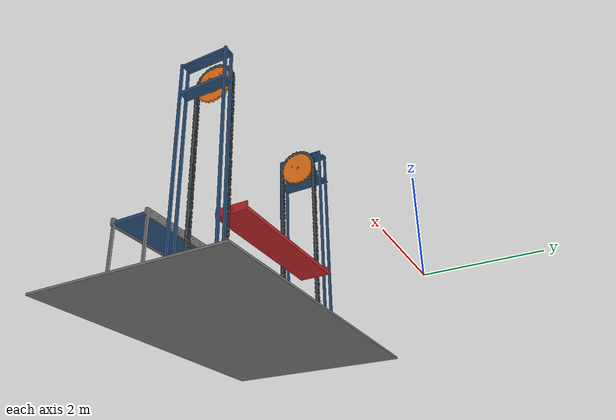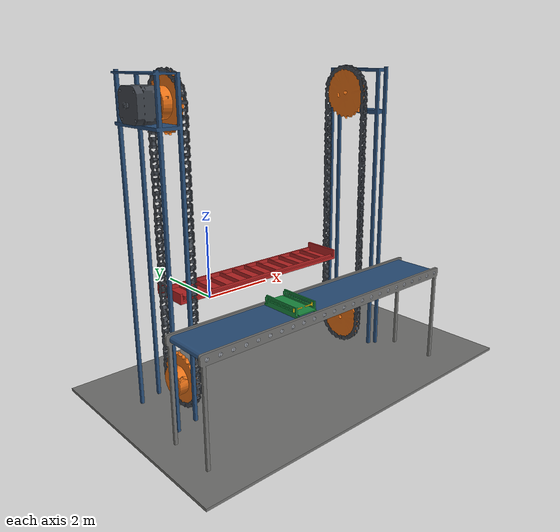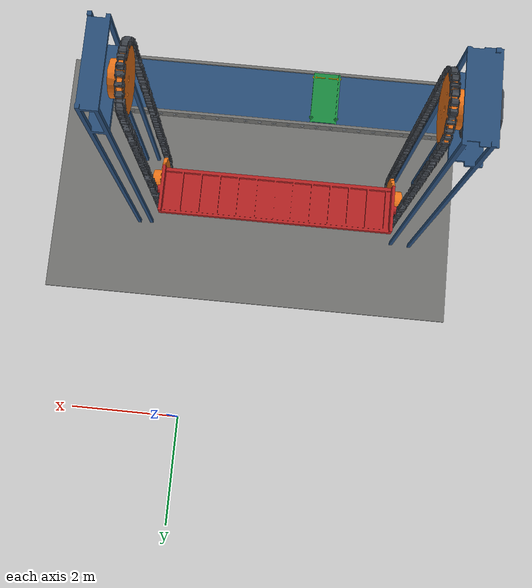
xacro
<?xml version="1.0"?>
<robot name="assemforchouk" xmlns:xacro="http://www.ros.org/wiki/xacro">

  <xacro:arg name="fix_to_world"  default="true"/>
  <xacro:arg name="use_gazebo"    default="true"/>
  <xacro:arg name="controllers_file"
             default="$(find assemforchouk_sim)/config/controllers.yaml"/>

  <xacro:property name="mesh" value="package://assemforchouk_sim/meshes"/>

  <!-- Plinth underside sits at z = -3.592 in the CAD base frame; lift the whole
       model so the machine stands on the ground plane. -->
  <xacro:property name="ground_offset" value="3.592"/>

  <xacro:property name="slide_lower"  value="-1.90"/>
  <xacro:property name="slide_upper"  value="3.40"/>
  <xacro:property name="push_lower"   value="0.0"/>
  <xacro:property name="push_upper"   value="1.05"/>
  <xacro:property name="lift_lower"   value="-2.05"/>
  <xacro:property name="lift_upper"   value="4.10"/>
  <xacro:property name="shelf_lower"  value="-0.15"/>
  <xacro:property name="shelf_upper"  value="1.15"/>
  <!-- shelf deck abuts the carriage deck edge-to-edge at exactly this value -->
  <xacro:property name="shelf_transfer" value="1.055"/>

  <xacro:include filename="$(find assemforchouk_sim)/urdf/materials.xacro"/>

  <!-- =========================== world attachment =========================== -->
  <xacro:if value="$(arg fix_to_world)">
    <link name="world"/>
    <joint name="world_to_base" type="fixed">
      <parent link="world"/>
      <child  link="base_link"/>
      <origin xyz="0 0 ${ground_offset}" rpy="0 0 0"/>
    </joint>
  </xacro:if>

  <!-- ========================= base_link : the cell ========================= -->
  <link name="base_link">
    <inertial>
      <origin xyz="-1.037 -4.589 -0.498" rpy="0 0 0"/>
      <mass value="2259.2"/>
      <inertia ixx="4719.6" ixy="87.766" ixz="50.036"
               iyy="13025"  iyz="-249.6" izz="10834"/>
    </inertial>

    <visual name="plinth">      <geometry><mesh filename="${mesh}/base_floor.stl"/></geometry>       <material name="concrete"/>     </visual>
    <visual name="towers">      <geometry><mesh filename="${mesh}/base_tower.stl"/></geometry>       <material name="steel_frame"/>  </visual>
    <visual name="rollerframe"> <geometry><mesh filename="${mesh}/base_rollerframe.stl"/></geometry> <material name="steel_frame"/>  </visual>
    <visual name="rollers">     <geometry><mesh filename="${mesh}/base_roller.stl"/></geometry>      <material name="steel_light"/>  </visual>
    <visual name="drums">       <geometry><mesh filename="${mesh}/base_drum.stl"/></geometry>        <material name="safety_orange"/></visual>
    <visual name="drive">       <geometry><mesh filename="${mesh}/base_drive.stl"/></geometry>       <material name="steel_dark"/>   </visual>
    <visual name="chains">      <geometry><mesh filename="${mesh}/base_chain.stl"/></geometry>       <material name="steel_dark"/>   </visual>

    <!-- Collision uses primitives only.  The visual meshes are 40 k triangles;
         feeding those to the physics engine would make the sim unusable. -->
    <!-- The CAD "floor" part is a 50 mm slab plus the open legs of the roller
         table, not a solid plinth: only the slab and the roller bed are solid. -->
    <collision name="floor_pad_col">
      <origin xyz="-1.0370 -4.5890 -3.5670"/>
      <geometry><box size="7.7090 4.6420 0.0500"/></geometry>
    </collision>
    <collision name="roller_bed_col">
      <origin xyz="-1.4320 -5.7230 -1.5720"/>
      <geometry><box size="5.8800 1.0000 0.0600"/></geometry>
    </collision>
    <!-- lift tower frames, at the measured extents so the shelf clears them -->
    <collision name="tower_left_col">
      <origin xyz="-3.9660 -4.3270 -0.4770"/>
      <geometry><box size="0.4680 1.3250 6.0000"/></geometry>
    </collision>
    <collision name="tower_right_col">
      <origin xyz="1.0180 -4.3290 -0.4770"/>
      <geometry><box size="0.2990 1.3200 6.0000"/></geometry>
    </collision>
  </link>

  <!-- ================= carriage : platform on the roller bed ================ -->
  <!-- export name: link "convoyeur", joint "slider" -->
  <link name="carriage">
    <inertial>
      <origin xyz="0.73104 0.03887 0.45206" rpy="0 0 0"/>
      <mass value="14.708"/>
      <inertia ixx="0.96682" ixy="2.1305E-08" ixz="-3.4737E-08"
               iyy="1.0388"  iyz="-0.0014398" izz="0.12891"/>
    </inertial>
    <visual name="platform">
      <geometry><mesh filename="${mesh}/carriage.stl"/></geometry>
      <material name="machine_green"/>
    </visual>
    <collision name="deck_floor">
      <origin xyz="0.7312 -0.0011 0.4501"/>
      <geometry><box size="0.5000 0.0670 0.9000"/></geometry>
    </collision>
    <collision name="wall_left">
      <origin xyz="0.9622 0.0989 0.4501"/>
      <geometry><box size="0.0390 0.1330 0.9000"/></geometry>
    </collision>
    <collision name="wall_right">
      <origin xyz="0.5022 0.0989 0.4501"/>
      <geometry><box size="0.0390 0.1330 0.9000"/></geometry>
    </collision>
  </link>

  <joint name="carriage_slide" type="prismatic">
    <origin xyz="-1.4318 -6.1731 -1.5024" rpy="1.5708 0 3.1416"/>
    <parent link="base_link"/>
    <child  link="carriage"/>
    <axis xyz="-1 0 0"/>                <!-- = +X in world -->
    <limit lower="${slide_lower}" upper="${slide_upper}" effort="1500" velocity="1.0"/>
    <dynamics damping="60.0" friction="8.0"/>
  </joint>

  <!-- ===================== pusher : blades on the carriage ================== -->
  <!-- export name: link "guidage", joint "pusher" -->
  <link name="pusher">
    <inertial>
      <origin xyz="-0.028597 0.035 -0.2" rpy="0 0 0"/>
      <mass value="0.1474"/>
      <inertia ixx="0.00060555" ixy="-2.2972E-20" ixz="1.5727E-20"
               iyy="0.00056767" iyz="-6.4327E-17" izz="4.0345E-05"/>
    </inertial>
    <visual name="blades">
      <geometry><mesh filename="${mesh}/pusher.stl"/></geometry>
      <material name="safety_yellow"/>
    </visual>
    <collision name="blade_a_col">
      <origin xyz="-0.0281 0.0354 -0.0598"/>
      <geometry><box size="0.0300 0.0700 0.2200"/></geometry>
    </collision>
    <collision name="blade_b_col">
      <origin xyz="-0.0281 0.0354 -0.3398"/>
      <geometry><box size="0.0300 0.0700 0.2200"/></geometry>
    </collision>
  </link>

  <joint name="pusher_extend" type="prismatic">
    <origin xyz="0.93104 0.065 0.08" rpy="0 1.5708 0"/>
    <parent link="carriage"/>
    <child  link="pusher"/>
    <axis xyz="-1 0 0"/>
    <limit lower="${push_lower}" upper="${push_upper}" effort="600" velocity="0.5"/>
    <dynamics damping="8.0" friction="1.0"/>
  </joint>

  <!-- ================== lift_carriage : the chain-lift carriage ============= -->
  <link name="lift_carriage">
    <inertial>
      <origin xyz="0 0 0" rpy="0 0 0"/>
      <mass value="25.0"/>
      <inertia ixx="0.5208" ixy="0" ixz="0" iyy="2.2708" iyz="0" izz="2.4167"/>
    </inertial>
  </link>

  <joint name="lift" type="prismatic">
    <origin xyz="1.1669 -4.9292 2.5233" rpy="1.5708 0 0"/>
    <parent link="base_link"/>
    <child  link="lift_carriage"/>
    <axis xyz="0 1 0"/>                 <!-- = +Z in world (vertical) -->
    <limit lower="${lift_lower}" upper="${lift_upper}" effort="8000" velocity="0.8"/>
    <dynamics damping="400.0" friction="40.0"/>
  </joint>

  <!-- ====================== shelf : the comptoir + tray ===================== -->
  <!-- export name: link "axe y", joint "shelf" -->
  <link name="shelf">
    <inertial>
      <origin xyz="-2.9714 -4.0448 -1.1359" rpy="0 0 0"/>
      <mass value="104.96"/>
      <inertia ixx="8.0654" ixy="-0.00026861" ixz="0.00082728"
               iyy="152.65" iyz="0.11198"     izz="145.02"/>
    </inertial>
    <visual name="comptoir">
      <geometry><mesh filename="${mesh}/shelf.stl"/></geometry>
      <material name="machine_red"/>
    </visual>
    <!-- Deck floor, the two end walls, and the dividers that split the comptoir
         into package slots.  The slots are what a pushed package drops into. -->
    <!-- Deck floor, the two end walls, and the 11 dividers (30 mm wide on a
         320 mm pitch, measured off the mesh) that split the comptoir into
         twelve 290 mm package slots. -->
    <collision name="deck_floor">
      <origin xyz="-2.6499 -4.0813 -1.1112"/>
      <geometry><box size="4.1000 0.0100 0.8000"/></geometry>
    </collision>
    <collision name="end_left">
      <origin xyz="-4.6024 -3.9763 -1.1112"/>
      <geometry><box size="0.1950 0.2000 0.8000"/></geometry>
    </collision>
    <collision name="end_right">
      <origin xyz="-0.6499 -3.9763 -1.1112"/>
      <geometry><box size="0.1000 0.2000 0.8000"/></geometry>
    </collision>
    <collision name="divider_1">
      <origin xyz="-4.1999 -4.0263 -1.1112"/>
      <geometry><box size="0.0300 0.1000 0.8000"/></geometry>
    </collision>
    <collision name="divider_2">
      <origin xyz="-3.8799 -4.0263 -1.1112"/>
      <geometry><box size="0.0300 0.1000 0.8000"/></geometry>
    </collision>
    <collision name="divider_3">
      <origin xyz="-3.5599 -4.0263 -1.1112"/>
      <geometry><box size="0.0300 0.1000 0.8000"/></geometry>
    </collision>
    <collision name="divider_4">
      <origin xyz="-3.2399 -4.0263 -1.1112"/>
      <geometry><box size="0.0300 0.1000 0.8000"/></geometry>
    </collision>
    <collision name="divider_5">
      <origin xyz="-2.9199 -4.0263 -1.1112"/>
      <geometry><box size="0.0300 0.1000 0.8000"/></geometry>
    </collision>
    <collision name="divider_6">
      <origin xyz="-2.5999 -4.0263 -1.1112"/>
      <geometry><box size="0.0300 0.1000 0.8000"/></geometry>
    </collision>
    <collision name="divider_7">
      <origin xyz="-2.2799 -4.0263 -1.1112"/>
      <geometry><box size="0.0300 0.1000 0.8000"/></geometry>
    </collision>
    <collision name="divider_8">
      <origin xyz="-1.9599 -4.0263 -1.1112"/>
      <geometry><box size="0.0300 0.1000 0.8000"/></geometry>
    </collision>
    <collision name="divider_9">
      <origin xyz="-1.6399 -4.0263 -1.1112"/>
      <geometry><box size="0.0300 0.1000 0.8000"/></geometry>
    </collision>
    <collision name="divider_10">
      <origin xyz="-1.3199 -4.0263 -1.1112"/>
      <geometry><box size="0.0300 0.1000 0.8000"/></geometry>
    </collision>
    <collision name="divider_11">
      <origin xyz="-0.9999 -4.0263 -1.1112"/>
      <geometry><box size="0.0300 0.1000 0.8000"/></geometry>
    </collision>
  </link>

  <joint name="shelf_extend" type="prismatic">
    <origin xyz="0 0 0" rpy="0 0 0"/>
    <parent link="lift_carriage"/>
    <child  link="shelf"/>
    <axis xyz="0 0 1"/>                 <!-- = -Y in world: positive now EXTENDS
                                             the shelf toward the conveyor
                                             (the export had it reversed) -->
    <limit lower="${shelf_lower}" upper="${shelf_upper}" effort="3000" velocity="0.6"/>
    <dynamics damping="200.0" friction="20.0"/>
  </joint>

  <xacro:if value="$(arg use_gazebo)">
    <xacro:include filename="$(find assemforchouk_sim)/urdf/assemforchouk.ros2_control.xacro"/>
    <xacro:include filename="$(find assemforchouk_sim)/urdf/assemforchouk.gazebo.xacro"/>
  </xacro:if>
</robot>

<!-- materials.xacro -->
<robot xmlns:xacro="http://www.ros.org/wiki/xacro">
  <!-- Industrial palette. URDF materials are carried into SDF by sdformat's
       URDF parser, so these colours show up in Gazebo as well as RViz. -->
  <material name="steel_frame">   <color rgba="0.16 0.31 0.48 1.0"/></material>
  <material name="steel_dark">    <color rgba="0.25 0.27 0.30 1.0"/></material>
  <material name="steel_light">   <color rgba="0.62 0.64 0.67 1.0"/></material>
  <material name="concrete">      <color rgba="0.45 0.45 0.44 1.0"/></material>
  <material name="safety_orange"> <color rgba="0.92 0.45 0.09 1.0"/></material>
  <material name="safety_yellow"> <color rgba="0.90 0.75 0.05 1.0"/></material>
  <material name="machine_green"> <color rgba="0.10 0.55 0.25 1.0"/></material>
  <material name="machine_red">   <color rgba="0.72 0.14 0.14 1.0"/></material>
</robot>
